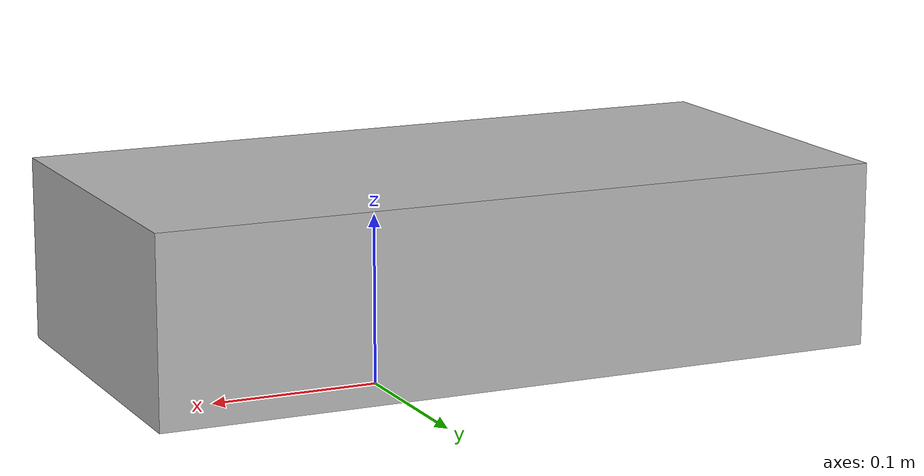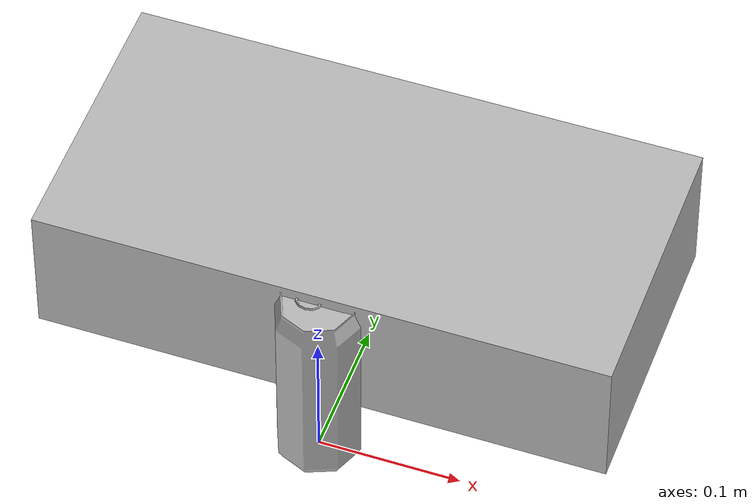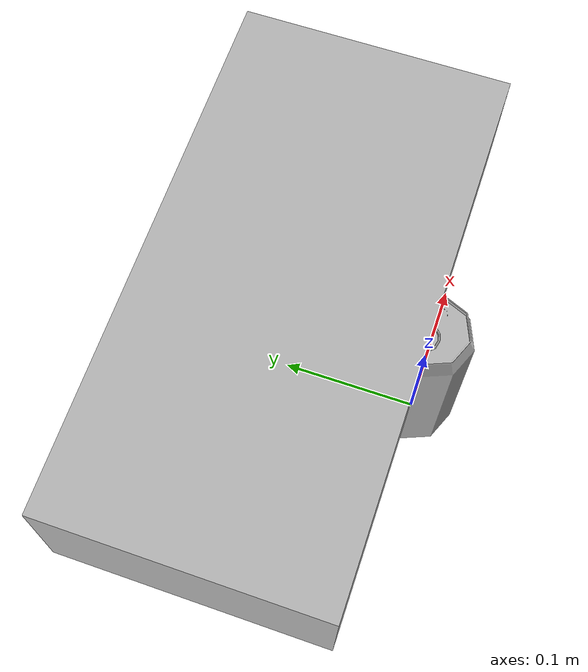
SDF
<?xml version="1.0" ?>
<sdf version="1.8">
  <world name="world_demo">
    <physics name="1ms" type="ignored">
      <max_step_size>0.001</max_step_size>
      <real_time_factor>1.0</real_time_factor>
    </physics>
    <plugin
      filename="gz-sim-physics-system"
      name="gz::sim::systems::Physics">
    </plugin>
    <plugin
      filename="gz-sim-user-commands-system"
      name="gz::sim::systems::UserCommands">
    </plugin>
    <plugin
      filename="gz-sim-scene-broadcaster-system"
      name="gz::sim::systems::SceneBroadcaster">
    </plugin>

    <!--light-->
    <light type="directional" name="sun">
      <cast_shadows>true</cast_shadows>
      <pose>0 0 10 0 0 0</pose>
      <diffuse>0.8 0.8 0.8 1</diffuse>
      <specular>0.2 0.2 0.2 1</specular>
      <attenuation>
        <range>1000</range>
        <constant>0.9</constant>
        <linear>0.01</linear>
        <quadratic>0.001</quadratic>
      </attenuation>
      <direction>-0.5 0.1 -0.9</direction>
    </light>
    <include>
        <name>Coke0</name>
        <pose>0 0 0 0 0 0</pose>
        <uri>https://fuel.gazebosim.org/1.0/OpenRobotics/models/Coke</uri>
    </include>
    <include>
        <name>Coke1</name>
        <pose>0 0.1 0 0 0 0</pose>
        <uri>models/my_robot</uri>
    </include>
  </world>
</sdf>

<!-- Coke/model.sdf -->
<sdf version="1.6">
  <model name='Coke'>
    <static>true</static>
    <link name="body">
      <pose>0 0 0 0 0 0</pose>

        <visual name="visual">
          <geometry>
            <mesh><uri>model://Coke/meshes/coke.obj</uri></mesh>
          </geometry>
        </visual>

        <collision name="collision">
          <geometry>
            <mesh><uri>model://Coke/meshes/coke.obj</uri></mesh>
          </geometry>
        </collision>

        <!-- TODO: Replace with accurate values of mass and inertia -->
        <inertial>
          <mass>1.0</mass>
          <inertia>
            <ixx>0.003366666666666667</ixx>
            <iyy>0.0008666666666666667</iyy>
            <izz>0.0041666666666666675</izz>
          </inertia>
        </inertial>

    </link>

  </model>
</sdf>

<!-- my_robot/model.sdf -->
<sdf version='1.4'>
      <model name="my_robot">
      <static>true</static>
      <link name='chassis'>
            <pose>0 0 .1 0 0 0</pose>

            <collision name='collision'>
              <geometry>
                <box>
                  <size>.4 .2 .1</size>
                </box>
              </geometry>
            </collision>

            <visual name='visual'>
              <geometry>
                <box>
                  <size>.4 .2 .1</size>
                </box>
              </geometry>
            </visual>
          </link>
          </model>
    </sdf>
